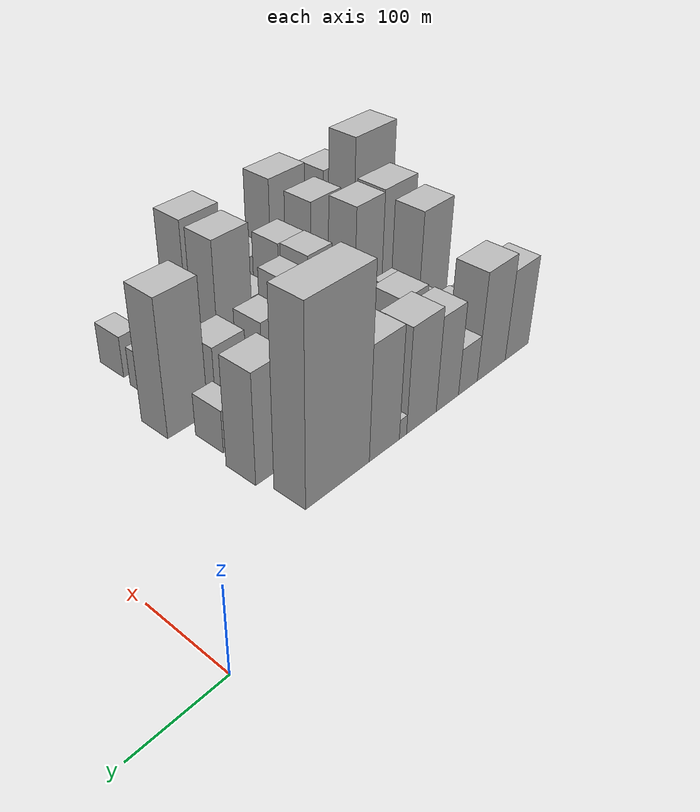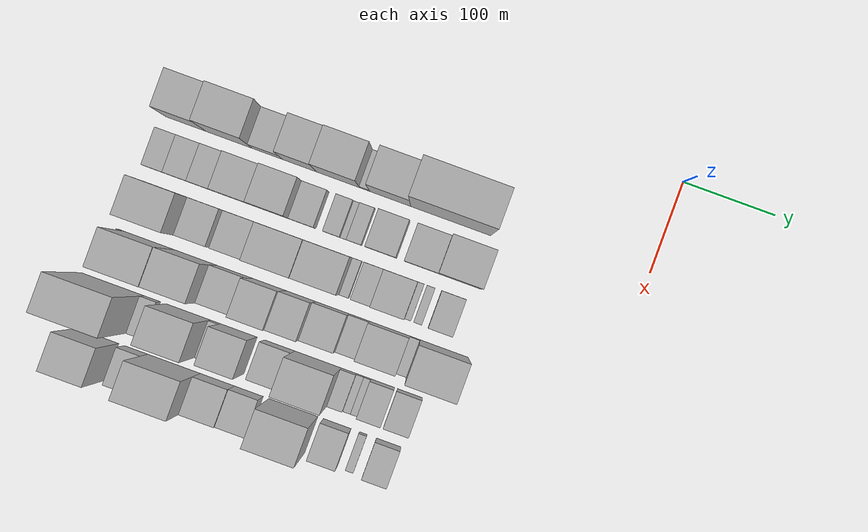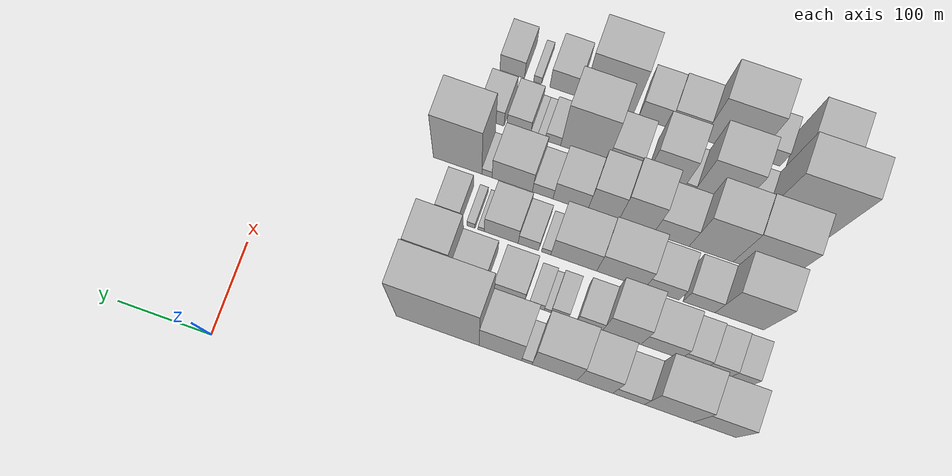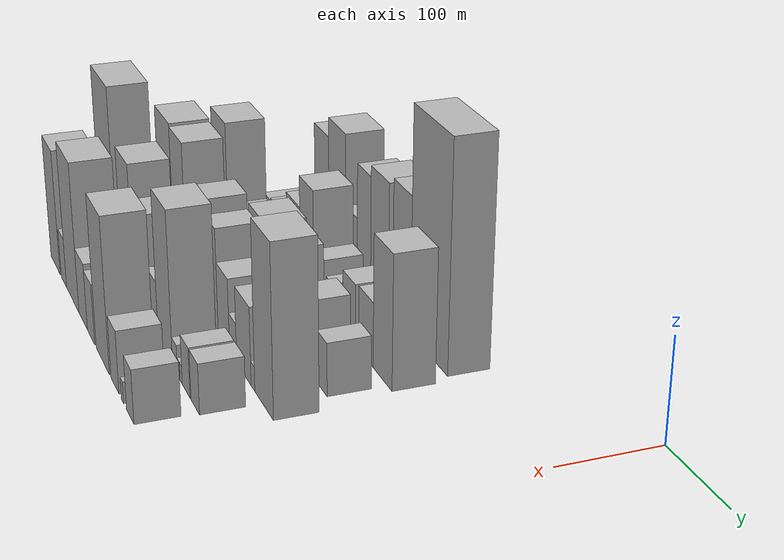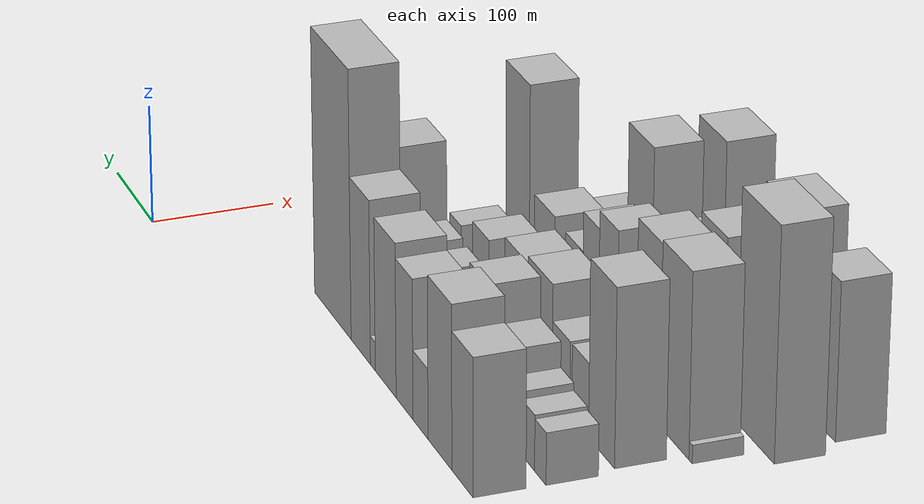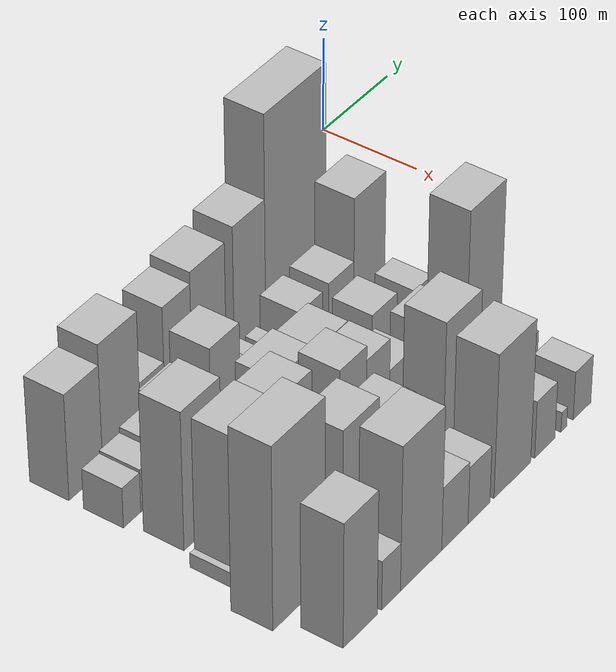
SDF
<sdf version="1.6">
 <world name="default">
  <model name="building_13">
   <static>1</static>
   <pose>100.0000 -499.0372 0 0.000000 0.000000 0.000000</pose>
   <link name="link">
    <pose>0 0 55.50 0 0 0</pose>
    <collision name="collision"><geometry><box><size>40.0000 44.0632 111.0000</size></box></geometry></collision>
    <visual name="visual">
     <cast_shadows>0</cast_shadows>
     <geometry><box><size>40.0000 44.0632 111.0000</size></box></geometry>
     <material>
      <script>
       <uri>model://HANNAS_wall/materials/scripts</uri>
       <uri>model://HANNAS_wall/materials/textures</uri>
       <name>vrc/HANNAS_wall</name>
      </script>
     </material>
    </visual>
   </link>
  </model>
  <model name="building_14">
   <static>1</static>
   <pose>100.0000 -451.7591 0 0.000000 0.000000 0.000000</pose>
   <link name="link">
    <pose>0 0 66.00 0 0 0</pose>
    <collision name="collision"><geometry><box><size>40.0000 50.4930 132.0000</size></box></geometry></collision>
    <visual name="visual">
     <cast_shadows>0</cast_shadows>
     <geometry><box><size>40.0000 50.4930 132.0000</size></box></geometry>
     <material>
      <script>
       <uri>model://HANNAS_wall/materials/scripts</uri>
       <uri>model://HANNAS_wall/materials/textures</uri>
       <name>vrc/HANNAS_wall</name>
      </script>
     </material>
    </visual>
   </link>
  </model>
  <model name="building_15">
   <static>1</static>
   <pose>100.0000 -410.1118 0 0.000000 0.000000 0.000000</pose>
   <link name="link">
    <pose>0 0 28.50 0 0 0</pose>
    <collision name="collision"><geometry><box><size>40.0000 32.8017 57.0000</size></box></geometry></collision>
    <visual name="visual">
     <cast_shadows>0</cast_shadows>
     <geometry><box><size>40.0000 32.8017 57.0000</size></box></geometry>
     <material>
      <script>
       <uri>model://HANNAS_wall/materials/scripts</uri>
       <uri>model://HANNAS_wall/materials/textures</uri>
       <name>vrc/HANNAS_wall</name>
      </script>
     </material>
    </visual>
   </link>
  </model>
  <model name="building_16">
   <static>1</static>
   <pose>100.0000 -375.1171 0 0.000000 0.000000 0.000000</pose>
   <link name="link">
    <pose>0 0 57.00 0 0 0</pose>
    <collision name="collision"><geometry><box><size>40.0000 37.1876 114.0000</size></box></geometry></collision>
    <visual name="visual">
     <cast_shadows>0</cast_shadows>
     <geometry><box><size>40.0000 37.1876 114.0000</size></box></geometry>
     <material>
      <script>
       <uri>model://HANNAS_wall/materials/scripts</uri>
       <uri>model://HANNAS_wall/materials/textures</uri>
       <name>vrc/HANNAS_wall</name>
      </script>
     </material>
    </visual>
   </link>
  </model>
  <model name="building_17">
   <static>1</static>
   <pose>100.0000 -333.0066 0 0.000000 0.000000 0.000000</pose>
   <link name="link">
    <pose>0 0 63.00 0 0 0</pose>
    <collision name="collision"><geometry><box><size>40.0000 47.0333 126.0000</size></box></geometry></collision>
    <visual name="visual">
     <cast_shadows>0</cast_shadows>
     <geometry><box><size>40.0000 47.0333 126.0000</size></box></geometry>
     <material>
      <script>
       <uri>model://HANNAS_wall/materials/scripts</uri>
       <uri>model://HANNAS_wall/materials/textures</uri>
       <name>vrc/HANNAS_wall</name>
      </script>
     </material>
    </visual>
   </link>
  </model>
  <model name="building_18">
   <static>1</static>
   <pose>100.0000 -303.9368 0 0.000000 0.000000 0.000000</pose>
   <link name="link">
    <pose>0 0 12.00 0 0 0</pose>
    <collision name="collision"><geometry><box><size>40.0000 11.1064 24.0000</size></box></geometry></collision>
    <visual name="visual">
     <cast_shadows>0</cast_shadows>
     <geometry><box><size>40.0000 11.1064 24.0000</size></box></geometry>
     <material>
      <script>
       <uri>model://HANNAS_wall/materials/scripts</uri>
       <uri>model://HANNAS_wall/materials/textures</uri>
       <name>vrc/HANNAS_wall</name>
      </script>
     </material>
    </visual>
   </link>
  </model>
  <model name="building_19">
   <static>1</static>
   <pose>100.0000 -276.0920 0 0.000000 0.000000 0.000000</pose>
   <link name="link">
    <pose>0 0 67.50 0 0 0</pose>
    <collision name="collision"><geometry><box><size>40.0000 44.5833 135.0000</size></box></geometry></collision>
    <visual name="visual">
     <cast_shadows>0</cast_shadows>
     <geometry><box><size>40.0000 44.5833 135.0000</size></box></geometry>
     <material>
      <script>
       <uri>model://HANNAS_wall/materials/scripts</uri>
       <uri>model://HANNAS_wall/materials/textures</uri>
       <name>vrc/HANNAS_wall</name>
      </script>
     </material>
    </visual>
   </link>
  </model>
  <model name="building_20">
   <static>1</static>
   <pose>100.0000 -210.1703 0 0.000000 0.000000 0.000000</pose>
   <link name="link">
    <pose>0 0 111.00 0 0 0</pose>
    <collision name="collision"><geometry><box><size>40.0000 87.2600 222.0000</size></box></geometry></collision>
    <visual name="visual">
     <cast_shadows>0</cast_shadows>
     <geometry><box><size>40.0000 87.2600 222.0000</size></box></geometry>
     <material>
      <script>
       <uri>model://HANNAS_wall/materials/scripts</uri>
       <uri>model://HANNAS_wall/materials/textures</uri>
       <name>vrc/HANNAS_wall</name>
      </script>
     </material>
    </visual>
   </link>
  </model>
  <model name="building_63">
   <static>1</static>
   <pose>155.0000 -510.1110 0 0.000000 0.000000 0.000000</pose>
   <link name="link">
    <pose>0 0 21.00 0 0 0</pose>
    <collision name="collision"><geometry><box><size>40.0000 22.8636 42.0000</size></box></geometry></collision>
    <visual name="visual">
     <cast_shadows>0</cast_shadows>
     <geometry><box><size>40.0000 22.8636 42.0000</size></box></geometry>
     <material>
      <script>
       <uri>model://HANNAS_wall/materials/scripts</uri>
       <uri>model://HANNAS_wall/materials/textures</uri>
       <name>vrc/HANNAS_wall</name>
      </script>
     </material>
    </visual>
   </link>
  </model>
  <model name="building_64">
   <static>1</static>
   <pose>155.0000 -485.5041 0 0.000000 0.000000 0.000000</pose>
   <link name="link">
    <pose>0 0 22.50 0 0 0</pose>
    <collision name="collision"><geometry><box><size>40.0000 26.3502 45.0000</size></box></geometry></collision>
    <visual name="visual">
     <cast_shadows>0</cast_shadows>
     <geometry><box><size>40.0000 26.3502 45.0000</size></box></geometry>
     <material>
      <script>
       <uri>model://HANNAS_wall/materials/scripts</uri>
       <uri>model://HANNAS_wall/materials/textures</uri>
       <name>vrc/HANNAS_wall</name>
      </script>
     </material>
    </visual>
   </link>
  </model>
  <model name="building_65">
   <static>1</static>
   <pose>155.0000 -459.2573 0 0.000000 0.000000 0.000000</pose>
   <link name="link">
    <pose>0 0 25.50 0 0 0</pose>
    <collision name="collision"><geometry><box><size>40.0000 26.1435 51.0000</size></box></geometry></collision>
    <visual name="visual">
     <cast_shadows>0</cast_shadows>
     <geometry><box><size>40.0000 26.1435 51.0000</size></box></geometry>
     <material>
      <script>
       <uri>model://HANNAS_wall/materials/scripts</uri>
       <uri>model://HANNAS_wall/materials/textures</uri>
       <name>vrc/HANNAS_wall</name>
      </script>
     </material>
    </visual>
   </link>
  </model>
  <model name="building_66">
   <static>1</static>
   <pose>155.0000 -425.3803 0 0.000000 0.000000 0.000000</pose>
   <link name="link">
    <pose>0 0 36.00 0 0 0</pose>
    <collision name="collision"><geometry><box><size>40.0000 41.6105 72.0000</size></box></geometry></collision>
    <visual name="visual">
     <cast_shadows>0</cast_shadows>
     <geometry><box><size>40.0000 41.6105 72.0000</size></box></geometry>
     <material>
      <script>
       <uri>model://HANNAS_wall/materials/scripts</uri>
       <uri>model://HANNAS_wall/materials/textures</uri>
       <name>vrc/HANNAS_wall</name>
      </script>
     </material>
    </visual>
   </link>
  </model>
  <model name="building_67">
   <static>1</static>
   <pose>155.0000 -384.4591 0 0.000000 0.000000 0.000000</pose>
   <link name="link">
    <pose>0 0 52.50 0 0 0</pose>
    <collision name="collision"><geometry><box><size>40.0000 40.2318 105.0000</size></box></geometry></collision>
    <visual name="visual">
     <cast_shadows>0</cast_shadows>
     <geometry><box><size>40.0000 40.2318 105.0000</size></box></geometry>
     <material>
      <script>
       <uri>model://HANNAS_wall/materials/scripts</uri>
       <uri>model://HANNAS_wall/materials/textures</uri>
       <name>vrc/HANNAS_wall</name>
      </script>
     </material>
    </visual>
   </link>
  </model>
  <model name="building_68">
   <static>1</static>
   <pose>155.0000 -350.8436 0 0.000000 0.000000 0.000000</pose>
   <link name="link">
    <pose>0 0 22.50 0 0 0</pose>
    <collision name="collision"><geometry><box><size>40.0000 26.9992 45.0000</size></box></geometry></collision>
    <visual name="visual">
     <cast_shadows>0</cast_shadows>
     <geometry><box><size>40.0000 26.9992 45.0000</size></box></geometry>
     <material>
      <script>
       <uri>model://HANNAS_wall/materials/scripts</uri>
       <uri>model://HANNAS_wall/materials/textures</uri>
       <name>vrc/HANNAS_wall</name>
      </script>
     </material>
    </visual>
   </link>
  </model>
  <model name="building_69">
   <static>1</static>
   <pose>155.0000 -319.2684 0 0.000000 0.000000 0.000000</pose>
   <link name="link">
    <pose>0 0 16.50 0 0 0</pose>
    <collision name="collision"><geometry><box><size>40.0000 18.1512 33.0000</size></box></geometry></collision>
    <visual name="visual">
     <cast_shadows>0</cast_shadows>
     <geometry><box><size>40.0000 18.1512 33.0000</size></box></geometry>
     <material>
      <script>
       <uri>model://HANNAS_wall/materials/scripts</uri>
       <uri>model://HANNAS_wall/materials/textures</uri>
       <name>vrc/HANNAS_wall</name>
      </script>
     </material>
    </visual>
   </link>
  </model>
  <model name="building_70">
   <static>1</static>
   <pose>155.0000 -306.5829 0 0.000000 0.000000 0.000000</pose>
   <link name="link">
    <pose>0 0 7.50 0 0 0</pose>
    <collision name="collision"><geometry><box><size>40.0000 7.2198 15.0000</size></box></geometry></collision>
    <visual name="visual">
     <cast_shadows>0</cast_shadows>
     <geometry><box><size>40.0000 7.2198 15.0000</size></box></geometry>
     <material>
      <script>
       <uri>model://HANNAS_wall/materials/scripts</uri>
       <uri>model://HANNAS_wall/materials/textures</uri>
       <name>vrc/HANNAS_wall</name>
      </script>
     </material>
    </visual>
   </link>
  </model>
  <model name="building_71">
   <static>1</static>
   <pose>155.0000 -294.9436 0 0.000000 0.000000 0.000000</pose>
   <link name="link">
    <pose>0 0 15.00 0 0 0</pose>
    <collision name="collision"><geometry><box><size>40.0000 16.0590 30.0000</size></box></geometry></collision>
    <visual name="visual">
     <cast_shadows>0</cast_shadows>
     <geometry><box><size>40.0000 16.0590 30.0000</size></box></geometry>
     <material>
      <script>
       <uri>model://HANNAS_wall/materials/scripts</uri>
       <uri>model://HANNAS_wall/materials/textures</uri>
       <name>vrc/HANNAS_wall</name>
      </script>
     </material>
    </visual>
   </link>
  </model>
  <model name="building_72">
   <static>1</static>
   <pose>155.0000 -265.4632 0 0.000000 0.000000 0.000000</pose>
   <link name="link">
    <pose>0 0 30.00 0 0 0</pose>
    <collision name="collision"><geometry><box><size>40.0000 32.9017 60.0000</size></box></geometry></collision>
    <visual name="visual">
     <cast_shadows>0</cast_shadows>
     <geometry><box><size>40.0000 32.9017 60.0000</size></box></geometry>
     <material>
      <script>
       <uri>model://HANNAS_wall/materials/scripts</uri>
       <uri>model://HANNAS_wall/materials/textures</uri>
       <name>vrc/HANNAS_wall</name>
      </script>
     </material>
    </visual>
   </link>
  </model>
  <model name="building_73">
   <static>1</static>
   <pose>155.0000 -221.8447 0 0.000000 0.000000 0.000000</pose>
   <link name="link">
    <pose>0 0 31.50 0 0 0</pose>
    <collision name="collision"><geometry><box><size>40.0000 36.3352 63.0000</size></box></geometry></collision>
    <visual name="visual">
     <cast_shadows>0</cast_shadows>
     <geometry><box><size>40.0000 36.3352 63.0000</size></box></geometry>
     <material>
      <script>
       <uri>model://HANNAS_wall/materials/scripts</uri>
       <uri>model://HANNAS_wall/materials/textures</uri>
       <name>vrc/HANNAS_wall</name>
      </script>
     </material>
    </visual>
   </link>
  </model>
  <model name="building_74">
   <static>1</static>
   <pose>155.0000 -180.8123 0 0.000000 0.000000 0.000000</pose>
   <link name="link">
    <pose>0 0 64.50 0 0 0</pose>
    <collision name="collision"><geometry><box><size>40.0000 45.7296 129.0000</size></box></geometry></collision>
    <visual name="visual">
     <cast_shadows>0</cast_shadows>
     <geometry><box><size>40.0000 45.7296 129.0000</size></box></geometry>
     <material>
      <script>
       <uri>model://HANNAS_wall/materials/scripts</uri>
       <uri>model://HANNAS_wall/materials/textures</uri>
       <name>vrc/HANNAS_wall</name>
      </script>
     </material>
    </visual>
   </link>
  </model>
  <model name="building_120">
   <static>1</static>
   <pose>210.0000 -489.5160 0 0.000000 0.000000 0.000000</pose>
   <link name="link">
    <pose>0 0 72.00 0 0 0</pose>
    <collision name="collision"><geometry><box><size>40.0000 50.9542 144.0000</size></box></geometry></collision>
    <visual name="visual">
     <cast_shadows>0</cast_shadows>
     <geometry><box><size>40.0000 50.9542 144.0000</size></box></geometry>
     <material>
      <script>
       <uri>model://HANNAS_wall/materials/scripts</uri>
       <uri>model://HANNAS_wall/materials/textures</uri>
       <name>vrc/HANNAS_wall</name>
      </script>
     </material>
    </visual>
   </link>
  </model>
  <model name="building_121">
   <static>1</static>
   <pose>210.0000 -447.2644 0 0.000000 0.000000 0.000000</pose>
   <link name="link">
    <pose>0 0 30.00 0 0 0</pose>
    <collision name="collision"><geometry><box><size>40.0000 33.5490 60.0000</size></box></geometry></collision>
    <visual name="visual">
     <cast_shadows>0</cast_shadows>
     <geometry><box><size>40.0000 33.5490 60.0000</size></box></geometry>
     <material>
      <script>
       <uri>model://HANNAS_wall/materials/scripts</uri>
       <uri>model://HANNAS_wall/materials/textures</uri>
       <name>vrc/HANNAS_wall</name>
      </script>
     </material>
    </visual>
   </link>
  </model>
  <model name="building_122">
   <static>1</static>
   <pose>210.0000 -408.5274 0 0.000000 0.000000 0.000000</pose>
   <link name="link">
    <pose>0 0 30.00 0 0 0</pose>
    <collision name="collision"><geometry><box><size>40.0000 35.9251 60.0000</size></box></geometry></collision>
    <visual name="visual">
     <cast_shadows>0</cast_shadows>
     <geometry><box><size>40.0000 35.9251 60.0000</size></box></geometry>
     <material>
      <script>
       <uri>model://HANNAS_wall/materials/scripts</uri>
       <uri>model://HANNAS_wall/materials/textures</uri>
       <name>vrc/HANNAS_wall</name>
      </script>
     </material>
    </visual>
   </link>
  </model>
  <model name="building_123">
   <static>1</static>
   <pose>210.0000 -365.1267 0 0.000000 0.000000 0.000000</pose>
   <link name="link">
    <pose>0 0 45.00 0 0 0</pose>
    <collision name="collision"><geometry><box><size>40.0000 50.8763 90.0000</size></box></geometry></collision>
    <visual name="visual">
     <cast_shadows>0</cast_shadows>
     <geometry><box><size>40.0000 50.8763 90.0000</size></box></geometry>
     <material>
      <script>
       <uri>model://HANNAS_wall/materials/scripts</uri>
       <uri>model://HANNAS_wall/materials/textures</uri>
       <name>vrc/HANNAS_wall</name>
      </script>
     </material>
    </visual>
   </link>
  </model>
  <model name="building_124">
   <static>1</static>
   <pose>210.0000 -315.3275 0 0.000000 0.000000 0.000000</pose>
   <link name="link">
    <pose>0 0 42.00 0 0 0</pose>
    <collision name="collision"><geometry><box><size>40.0000 48.7222 84.0000</size></box></geometry></collision>
    <visual name="visual">
     <cast_shadows>0</cast_shadows>
     <geometry><box><size>40.0000 48.7222 84.0000</size></box></geometry>
     <material>
      <script>
       <uri>model://HANNAS_wall/materials/scripts</uri>
       <uri>model://HANNAS_wall/materials/textures</uri>
       <name>vrc/HANNAS_wall</name>
      </script>
     </material>
    </visual>
   </link>
  </model>
  <model name="building_125">
   <static>1</static>
   <pose>210.0000 -285.9425 0 0.000000 0.000000 0.000000</pose>
   <link name="link">
    <pose>0 0 10.50 0 0 0</pose>
    <collision name="collision"><geometry><box><size>40.0000 10.0478 21.0000</size></box></geometry></collision>
    <visual name="visual">
     <cast_shadows>0</cast_shadows>
     <geometry><box><size>40.0000 10.0478 21.0000</size></box></geometry>
     <material>
      <script>
       <uri>model://HANNAS_wall/materials/scripts</uri>
       <uri>model://HANNAS_wall/materials/textures</uri>
       <name>vrc/HANNAS_wall</name>
      </script>
     </material>
    </visual>
   </link>
  </model>
  <model name="building_126">
   <static>1</static>
   <pose>210.0000 -267.0698 0 0.000000 0.000000 0.000000</pose>
   <link name="link">
    <pose>0 0 21.00 0 0 0</pose>
    <collision name="collision"><geometry><box><size>40.0000 21.6975 42.0000</size></box></geometry></collision>
    <visual name="visual">
     <cast_shadows>0</cast_shadows>
     <geometry><box><size>40.0000 21.6975 42.0000</size></box></geometry>
     <material>
      <script>
       <uri>model://HANNAS_wall/materials/scripts</uri>
       <uri>model://HANNAS_wall/materials/textures</uri>
       <name>vrc/HANNAS_wall</name>
      </script>
     </material>
    </visual>
   </link>
  </model>
  <model name="building_127">
   <static>1</static>
   <pose>210.0000 -238.1213 0 0.000000 0.000000 0.000000</pose>
   <link name="link">
    <pose>0 0 33.00 0 0 0</pose>
    <collision name="collision"><geometry><box><size>40.0000 36.1995 66.0000</size></box></geometry></collision>
    <visual name="visual">
     <cast_shadows>0</cast_shadows>
     <geometry><box><size>40.0000 36.1995 66.0000</size></box></geometry>
     <material>
      <script>
       <uri>model://HANNAS_wall/materials/scripts</uri>
       <uri>model://HANNAS_wall/materials/textures</uri>
       <name>vrc/HANNAS_wall</name>
      </script>
     </material>
    </visual>
   </link>
  </model>
  <model name="building_128">
   <static>1</static>
   <pose>210.0000 -216.6535 0 0.000000 0.000000 0.000000</pose>
   <link name="link">
    <pose>0 0 7.50 0 0 0</pose>
    <collision name="collision"><geometry><box><size>40.0000 6.7360 15.0000</size></box></geometry></collision>
    <visual name="visual">
     <cast_shadows>0</cast_shadows>
     <geometry><box><size>40.0000 6.7360 15.0000</size></box></geometry>
     <material>
      <script>
       <uri>model://HANNAS_wall/materials/scripts</uri>
       <uri>model://HANNAS_wall/materials/textures</uri>
       <name>vrc/HANNAS_wall</name>
      </script>
     </material>
    </visual>
   </link>
  </model>
  <model name="building_129">
   <static>1</static>
   <pose>210.0000 -205.8684 0 0.000000 0.000000 0.000000</pose>
   <link name="link">
    <pose>0 0 10.50 0 0 0</pose>
    <collision name="collision"><geometry><box><size>40.0000 8.8343 21.0000</size></box></geometry></collision>
    <visual name="visual">
     <cast_shadows>0</cast_shadows>
     <geometry><box><size>40.0000 8.8343 21.0000</size></box></geometry>
     <material>
      <script>
       <uri>model://HANNAS_wall/materials/scripts</uri>
       <uri>model://HANNAS_wall/materials/textures</uri>
       <name>vrc/HANNAS_wall</name>
      </script>
     </material>
    </visual>
   </link>
  </model>
  <model name="building_130">
   <static>1</static>
   <pose>210.0000 -181.3753 0 0.000000 0.000000 0.000000</pose>
   <link name="link">
    <pose>0 0 25.50 0 0 0</pose>
    <collision name="collision"><geometry><box><size>40.0000 26.1519 51.0000</size></box></geometry></collision>
    <visual name="visual">
     <cast_shadows>0</cast_shadows>
     <geometry><box><size>40.0000 26.1519 51.0000</size></box></geometry>
     <material>
      <script>
       <uri>model://HANNAS_wall/materials/scripts</uri>
       <uri>model://HANNAS_wall/materials/textures</uri>
       <name>vrc/HANNAS_wall</name>
      </script>
     </material>
    </visual>
   </link>
  </model>
  <model name="building_172">
   <static>1</static>
   <pose>265.0000 -524.0344 0 0.000000 0.000000 0.000000</pose>
   <link name="link">
    <pose>0 0 7.50 0 0 0</pose>
    <collision name="collision"><geometry><box><size>40.0000 6.2170 15.0000</size></box></geometry></collision>
    <visual name="visual">
     <cast_shadows>0</cast_shadows>
     <geometry><box><size>40.0000 6.2170 15.0000</size></box></geometry>
     <material>
      <script>
       <uri>model://HANNAS_wall/materials/scripts</uri>
       <uri>model://HANNAS_wall/materials/textures</uri>
       <name>vrc/HANNAS_wall</name>
      </script>
     </material>
    </visual>
   </link>
  </model>
  <model name="building_173">
   <static>1</static>
   <pose>265.0000 -493.1805 0 0.000000 0.000000 0.000000</pose>
   <link name="link">
    <pose>0 0 75.00 0 0 0</pose>
    <collision name="collision"><geometry><box><size>40.0000 55.4907 150.0000</size></box></geometry></collision>
    <visual name="visual">
     <cast_shadows>0</cast_shadows>
     <geometry><box><size>40.0000 55.4907 150.0000</size></box></geometry>
     <material>
      <script>
       <uri>model://HANNAS_wall/materials/scripts</uri>
       <uri>model://HANNAS_wall/materials/textures</uri>
       <name>vrc/HANNAS_wall</name>
      </script>
     </material>
    </visual>
   </link>
  </model>
  <model name="building_174">
   <static>1</static>
   <pose>265.0000 -442.1698 0 0.000000 0.000000 0.000000</pose>
   <link name="link">
    <pose>0 0 73.50 0 0 0</pose>
    <collision name="collision"><geometry><box><size>40.0000 46.5308 147.0000</size></box></geometry></collision>
    <visual name="visual">
     <cast_shadows>0</cast_shadows>
     <geometry><box><size>40.0000 46.5308 147.0000</size></box></geometry>
     <material>
      <script>
       <uri>model://HANNAS_wall/materials/scripts</uri>
       <uri>model://HANNAS_wall/materials/textures</uri>
       <name>vrc/HANNAS_wall</name>
      </script>
     </material>
    </visual>
   </link>
  </model>
  <model name="building_175">
   <static>1</static>
   <pose>265.0000 -399.9388 0 0.000000 0.000000 0.000000</pose>
   <link name="link">
    <pose>0 0 37.50 0 0 0</pose>
    <collision name="collision"><geometry><box><size>40.0000 37.9312 75.0000</size></box></geometry></collision>
    <visual name="visual">
     <cast_shadows>0</cast_shadows>
     <geometry><box><size>40.0000 37.9312 75.0000</size></box></geometry>
     <material>
      <script>
       <uri>model://HANNAS_wall/materials/scripts</uri>
       <uri>model://HANNAS_wall/materials/textures</uri>
       <name>vrc/HANNAS_wall</name>
      </script>
     </material>
    </visual>
   </link>
  </model>
  <model name="building_176">
   <static>1</static>
   <pose>265.0000 -362.3117 0 0.000000 0.000000 0.000000</pose>
   <link name="link">
    <pose>0 0 60.00 0 0 0</pose>
    <collision name="collision"><geometry><box><size>40.0000 37.3228 120.0000</size></box></geometry></collision>
    <visual name="visual">
     <cast_shadows>0</cast_shadows>
     <geometry><box><size>40.0000 37.3228 120.0000</size></box></geometry>
     <material>
      <script>
       <uri>model://HANNAS_wall/materials/scripts</uri>
       <uri>model://HANNAS_wall/materials/textures</uri>
       <name>vrc/HANNAS_wall</name>
      </script>
     </material>
    </visual>
   </link>
  </model>
  <model name="building_177">
   <static>1</static>
   <pose>265.0000 -327.2841 0 0.000000 0.000000 0.000000</pose>
   <link name="link">
    <pose>0 0 52.50 0 0 0</pose>
    <collision name="collision"><geometry><box><size>40.0000 32.7325 105.0000</size></box></geometry></collision>
    <visual name="visual">
     <cast_shadows>0</cast_shadows>
     <geometry><box><size>40.0000 32.7325 105.0000</size></box></geometry>
     <material>
      <script>
       <uri>model://HANNAS_wall/materials/scripts</uri>
       <uri>model://HANNAS_wall/materials/textures</uri>
       <name>vrc/HANNAS_wall</name>
      </script>
     </material>
    </visual>
   </link>
  </model>
  <model name="building_178">
   <static>1</static>
   <pose>265.0000 -292.5692 0 0.000000 0.000000 0.000000</pose>
   <link name="link">
    <pose>0 0 36.00 0 0 0</pose>
    <collision name="collision"><geometry><box><size>40.0000 36.6973 72.0000</size></box></geometry></collision>
    <visual name="visual">
     <cast_shadows>0</cast_shadows>
     <geometry><box><size>40.0000 36.6973 72.0000</size></box></geometry>
     <material>
      <script>
       <uri>model://HANNAS_wall/materials/scripts</uri>
       <uri>model://HANNAS_wall/materials/textures</uri>
       <name>vrc/HANNAS_wall</name>
      </script>
     </material>
    </visual>
   </link>
  </model>
  <model name="building_179">
   <static>1</static>
   <pose>265.0000 -263.2019 0 0.000000 0.000000 0.000000</pose>
   <link name="link">
    <pose>0 0 19.50 0 0 0</pose>
    <collision name="collision"><geometry><box><size>40.0000 22.0373 39.0000</size></box></geometry></collision>
    <visual name="visual">
     <cast_shadows>0</cast_shadows>
     <geometry><box><size>40.0000 22.0373 39.0000</size></box></geometry>
     <material>
      <script>
       <uri>model://HANNAS_wall/materials/scripts</uri>
       <uri>model://HANNAS_wall/materials/textures</uri>
       <name>vrc/HANNAS_wall</name>
      </script>
     </material>
    </visual>
   </link>
  </model>
  <model name="building_180">
   <static>1</static>
   <pose>265.0000 -230.4928 0 0.000000 0.000000 0.000000</pose>
   <link name="link">
    <pose>0 0 37.50 0 0 0</pose>
    <collision name="collision"><geometry><box><size>40.0000 43.3809 75.0000</size></box></geometry></collision>
    <visual name="visual">
     <cast_shadows>0</cast_shadows>
     <geometry><box><size>40.0000 43.3809 75.0000</size></box></geometry>
     <material>
      <script>
       <uri>model://HANNAS_wall/materials/scripts</uri>
       <uri>model://HANNAS_wall/materials/textures</uri>
       <name>vrc/HANNAS_wall</name>
      </script>
     </material>
    </visual>
   </link>
  </model>
  <model name="building_181">
   <static>1</static>
   <pose>265.0000 -203.3347 0 0.000000 0.000000 0.000000</pose>
   <link name="link">
    <pose>0 0 12.00 0 0 0</pose>
    <collision name="collision"><geometry><box><size>40.0000 10.9353 24.0000</size></box></geometry></collision>
    <visual name="visual">
     <cast_shadows>0</cast_shadows>
     <geometry><box><size>40.0000 10.9353 24.0000</size></box></geometry>
     <material>
      <script>
       <uri>model://HANNAS_wall/materials/scripts</uri>
       <uri>model://HANNAS_wall/materials/textures</uri>
       <name>vrc/HANNAS_wall</name>
      </script>
     </material>
    </visual>
   </link>
  </model>
  <model name="building_182">
   <static>1</static>
   <pose>265.0000 -171.7483 0 0.000000 0.000000 0.000000</pose>
   <link name="link">
    <pose>0 0 81.00 0 0 0</pose>
    <collision name="collision"><geometry><box><size>40.0000 52.2374 162.0000</size></box></geometry></collision>
    <visual name="visual">
     <cast_shadows>0</cast_shadows>
     <geometry><box><size>40.0000 52.2374 162.0000</size></box></geometry>
     <material>
      <script>
       <uri>model://HANNAS_wall/materials/scripts</uri>
       <uri>model://HANNAS_wall/materials/textures</uri>
       <name>vrc/HANNAS_wall</name>
      </script>
     </material>
    </visual>
   </link>
  </model>
  <model name="building_223">
   <static>1</static>
   <pose>320.0000 -513.2614 0 0.000000 0.000000 0.000000</pose>
   <link name="link">
    <pose>0 0 94.50 0 0 0</pose>
    <collision name="collision"><geometry><box><size>40.0000 69.4002 189.0000</size></box></geometry></collision>
    <visual name="visual">
     <cast_shadows>0</cast_shadows>
     <geometry><box><size>40.0000 69.4002 189.0000</size></box></geometry>
     <material>
      <script>
       <uri>model://HANNAS_wall/materials/scripts</uri>
       <uri>model://HANNAS_wall/materials/textures</uri>
       <name>vrc/HANNAS_wall</name>
      </script>
     </material>
    </visual>
   </link>
  </model>
  <model name="building_224">
   <static>1</static>
   <pose>320.0000 -469.7385 0 0.000000 0.000000 0.000000</pose>
   <link name="link">
    <pose>0 0 16.50 0 0 0</pose>
    <collision name="collision"><geometry><box><size>40.0000 17.6455 33.0000</size></box></geometry></collision>
    <visual name="visual">
     <cast_shadows>0</cast_shadows>
     <geometry><box><size>40.0000 17.6455 33.0000</size></box></geometry>
     <material>
      <script>
       <uri>model://HANNAS_wall/materials/scripts</uri>
       <uri>model://HANNAS_wall/materials/textures</uri>
       <name>vrc/HANNAS_wall</name>
      </script>
     </material>
    </visual>
   </link>
  </model>
  <model name="building_225">
   <static>1</static>
   <pose>320.0000 -430.5641 0 0.000000 0.000000 0.000000</pose>
   <link name="link">
    <pose>0 0 69.00 0 0 0</pose>
    <collision name="collision"><geometry><box><size>40.0000 48.7032 138.0000</size></box></geometry></collision>
    <visual name="visual">
     <cast_shadows>0</cast_shadows>
     <geometry><box><size>40.0000 48.7032 138.0000</size></box></geometry>
     <material>
      <script>
       <uri>model://HANNAS_wall/materials/scripts</uri>
       <uri>model://HANNAS_wall/materials/textures</uri>
       <name>vrc/HANNAS_wall</name>
      </script>
     </material>
    </visual>
   </link>
  </model>
  <model name="building_226">
   <static>1</static>
   <pose>320.0000 -400.7509 0 0.000000 0.000000 0.000000</pose>
   <link name="link">
    <pose>0 0 12.00 0 0 0</pose>
    <collision name="collision"><geometry><box><size>40.0000 10.9233 24.0000</size></box></geometry></collision>
    <visual name="visual">
     <cast_shadows>0</cast_shadows>
     <geometry><box><size>40.0000 10.9233 24.0000</size></box></geometry>
     <material>
      <script>
       <uri>model://HANNAS_wall/materials/scripts</uri>
       <uri>model://HANNAS_wall/materials/textures</uri>
       <name>vrc/HANNAS_wall</name>
      </script>
     </material>
    </visual>
   </link>
  </model>
  <model name="building_227">
   <static>1</static>
   <pose>320.0000 -375.3691 0 0.000000 0.000000 0.000000</pose>
   <link name="link">
    <pose>0 0 54.00 0 0 0</pose>
    <collision name="collision"><geometry><box><size>40.0000 39.8403 108.0000</size></box></geometry></collision>
    <visual name="visual">
     <cast_shadows>0</cast_shadows>
     <geometry><box><size>40.0000 39.8403 108.0000</size></box></geometry>
     <material>
      <script>
       <uri>model://HANNAS_wall/materials/scripts</uri>
       <uri>model://HANNAS_wall/materials/textures</uri>
       <name>vrc/HANNAS_wall</name>
      </script>
     </material>
    </visual>
   </link>
  </model>
  <model name="building_228">
   <static>1</static>
   <pose>320.0000 -330.7669 0 0.000000 0.000000 0.000000</pose>
   <link name="link">
    <pose>0 0 30.00 0 0 0</pose>
    <collision name="collision"><geometry><box><size>40.0000 33.3641 60.0000</size></box></geometry></collision>
    <visual name="visual">
     <cast_shadows>0</cast_shadows>
     <geometry><box><size>40.0000 33.3641 60.0000</size></box></geometry>
     <material>
      <script>
       <uri>model://HANNAS_wall/materials/scripts</uri>
       <uri>model://HANNAS_wall/materials/textures</uri>
       <name>vrc/HANNAS_wall</name>
      </script>
     </material>
    </visual>
   </link>
  </model>
  <model name="building_229">
   <static>1</static>
   <pose>320.0000 -288.7604 0 0.000000 0.000000 0.000000</pose>
   <link name="link">
    <pose>0 0 75.00 0 0 0</pose>
    <collision name="collision"><geometry><box><size>40.0000 50.6489 150.0000</size></box></geometry></collision>
    <visual name="visual">
     <cast_shadows>0</cast_shadows>
     <geometry><box><size>40.0000 50.6489 150.0000</size></box></geometry>
     <material>
      <script>
       <uri>model://HANNAS_wall/materials/scripts</uri>
       <uri>model://HANNAS_wall/materials/textures</uri>
       <name>vrc/HANNAS_wall</name>
      </script>
     </material>
    </visual>
   </link>
  </model>
  <model name="building_230">
   <static>1</static>
   <pose>320.0000 -255.0669 0 0.000000 0.000000 0.000000</pose>
   <link name="link">
    <pose>0 0 15.00 0 0 0</pose>
    <collision name="collision"><geometry><box><size>40.0000 16.7380 30.0000</size></box></geometry></collision>
    <visual name="visual">
     <cast_shadows>0</cast_shadows>
     <geometry><box><size>40.0000 16.7380 30.0000</size></box></geometry>
     <material>
      <script>
       <uri>model://HANNAS_wall/materials/scripts</uri>
       <uri>model://HANNAS_wall/materials/textures</uri>
       <name>vrc/HANNAS_wall</name>
      </script>
     </material>
    </visual>
   </link>
  </model>
  <model name="building_231">
   <static>1</static>
   <pose>320.0000 -242.6004 0 0.000000 0.000000 0.000000</pose>
   <link name="link">
    <pose>0 0 9.00 0 0 0</pose>
    <collision name="collision"><geometry><box><size>40.0000 8.1950 18.0000</size></box></geometry></collision>
    <visual name="visual">
     <cast_shadows>0</cast_shadows>
     <geometry><box><size>40.0000 8.1950 18.0000</size></box></geometry>
     <material>
      <script>
       <uri>model://HANNAS_wall/materials/scripts</uri>
       <uri>model://HANNAS_wall/materials/textures</uri>
       <name>vrc/HANNAS_wall</name>
      </script>
     </material>
    </visual>
   </link>
  </model>
  <model name="building_232">
   <static>1</static>
   <pose>320.0000 -234.7206 0 0.000000 0.000000 0.000000</pose>
   <link name="link">
    <pose>0 0 9.00 0 0 0</pose>
    <collision name="collision"><geometry><box><size>40.0000 7.5646 18.0000</size></box></geometry></collision>
    <visual name="visual">
     <cast_shadows>0</cast_shadows>
     <geometry><box><size>40.0000 7.5646 18.0000</size></box></geometry>
     <material>
      <script>
       <uri>model://HANNAS_wall/materials/scripts</uri>
       <uri>model://HANNAS_wall/materials/textures</uri>
       <name>vrc/HANNAS_wall</name>
      </script>
     </material>
    </visual>
   </link>
  </model>
  <model name="building_233">
   <static>1</static>
   <pose>320.0000 -218.0963 0 0.000000 0.000000 0.000000</pose>
   <link name="link">
    <pose>0 0 24.00 0 0 0</pose>
    <collision name="collision"><geometry><box><size>40.0000 25.6840 48.0000</size></box></geometry></collision>
    <visual name="visual">
     <cast_shadows>0</cast_shadows>
     <geometry><box><size>40.0000 25.6840 48.0000</size></box></geometry>
     <material>
      <script>
       <uri>model://HANNAS_wall/materials/scripts</uri>
       <uri>model://HANNAS_wall/materials/textures</uri>
       <name>vrc/HANNAS_wall</name>
      </script>
     </material>
    </visual>
   </link>
  </model>
  <model name="building_234">
   <static>1</static>
   <pose>320.0000 -188.6757 0 0.000000 0.000000 0.000000</pose>
   <link name="link">
    <pose>0 0 24.00 0 0 0</pose>
    <collision name="collision"><geometry><box><size>40.0000 27.1572 48.0000</size></box></geometry></collision>
    <visual name="visual">
     <cast_shadows>0</cast_shadows>
     <geometry><box><size>40.0000 27.1572 48.0000</size></box></geometry>
     <material>
      <script>
       <uri>model://HANNAS_wall/materials/scripts</uri>
       <uri>model://HANNAS_wall/materials/textures</uri>
       <name>vrc/HANNAS_wall</name>
      </script>
     </material>
    </visual>
   </link>
  </model>
  <model name="building_278">
   <static>1</static>
   <pose>375.0000 -509.2454 0 0.000000 0.000000 0.000000</pose>
   <link name="link">
    <pose>0 0 64.50 0 0 0</pose>
    <collision name="collision"><geometry><box><size>40.0000 45.7369 129.0000</size></box></geometry></collision>
    <visual name="visual">
     <cast_shadows>0</cast_shadows>
     <geometry><box><size>40.0000 45.7369 129.0000</size></box></geometry>
     <material>
      <script>
       <uri>model://HANNAS_wall/materials/scripts</uri>
       <uri>model://HANNAS_wall/materials/textures</uri>
       <name>vrc/HANNAS_wall</name>
      </script>
     </material>
    </visual>
   </link>
  </model>
  <model name="building_279">
   <static>1</static>
   <pose>375.0000 -467.5562 0 0.000000 0.000000 0.000000</pose>
   <link name="link">
    <pose>0 0 25.50 0 0 0</pose>
    <collision name="collision"><geometry><box><size>40.0000 25.6415 51.0000</size></box></geometry></collision>
    <visual name="visual">
     <cast_shadows>0</cast_shadows>
     <geometry><box><size>40.0000 25.6415 51.0000</size></box></geometry>
     <material>
      <script>
       <uri>model://HANNAS_wall/materials/scripts</uri>
       <uri>model://HANNAS_wall/materials/textures</uri>
       <name>vrc/HANNAS_wall</name>
      </script>
     </material>
    </visual>
   </link>
  </model>
  <model name="building_280">
   <static>1</static>
   <pose>375.0000 -425.9982 0 0.000000 0.000000 0.000000</pose>
   <link name="link">
    <pose>0 0 75.00 0 0 0</pose>
    <collision name="collision"><geometry><box><size>40.0000 57.4745 150.0000</size></box></geometry></collision>
    <visual name="visual">
     <cast_shadows>0</cast_shadows>
     <geometry><box><size>40.0000 57.4745 150.0000</size></box></geometry>
     <material>
      <script>
       <uri>model://HANNAS_wall/materials/scripts</uri>
       <uri>model://HANNAS_wall/materials/textures</uri>
       <name>vrc/HANNAS_wall</name>
      </script>
     </material>
    </visual>
   </link>
  </model>
  <model name="building_281">
   <static>1</static>
   <pose>375.0000 -378.6598 0 0.000000 0.000000 0.000000</pose>
   <link name="link">
    <pose>0 0 33.00 0 0 0</pose>
    <collision name="collision"><geometry><box><size>40.0000 37.2023 66.0000</size></box></geometry></collision>
    <visual name="visual">
     <cast_shadows>0</cast_shadows>
     <geometry><box><size>40.0000 37.2023 66.0000</size></box></geometry>
     <material>
      <script>
       <uri>model://HANNAS_wall/materials/scripts</uri>
       <uri>model://HANNAS_wall/materials/textures</uri>
       <name>vrc/HANNAS_wall</name>
      </script>
     </material>
    </visual>
   </link>
  </model>
  <model name="building_282">
   <static>1</static>
   <pose>375.0000 -344.3430 0 0.000000 0.000000 0.000000</pose>
   <link name="link">
    <pose>0 0 30.00 0 0 0</pose>
    <collision name="collision"><geometry><box><size>40.0000 31.4312 60.0000</size></box></geometry></collision>
    <visual name="visual">
     <cast_shadows>0</cast_shadows>
     <geometry><box><size>40.0000 31.4312 60.0000</size></box></geometry>
     <material>
      <script>
       <uri>model://HANNAS_wall/materials/scripts</uri>
       <uri>model://HANNAS_wall/materials/textures</uri>
       <name>vrc/HANNAS_wall</name>
      </script>
     </material>
    </visual>
   </link>
  </model>
  <model name="building_283">
   <static>1</static>
   <pose>375.0000 -295.8221 0 0.000000 0.000000 0.000000</pose>
   <link name="link">
    <pose>0 0 75.00 0 0 0</pose>
    <collision name="collision"><geometry><box><size>40.0000 53.6106 150.0000</size></box></geometry></collision>
    <visual name="visual">
     <cast_shadows>0</cast_shadows>
     <geometry><box><size>40.0000 53.6106 150.0000</size></box></geometry>
     <material>
      <script>
       <uri>model://HANNAS_wall/materials/scripts</uri>
       <uri>model://HANNAS_wall/materials/textures</uri>
       <name>vrc/HANNAS_wall</name>
      </script>
     </material>
    </visual>
   </link>
  </model>
  <model name="building_284">
   <static>1</static>
   <pose>375.0000 -247.8530 0 0.000000 0.000000 0.000000</pose>
   <link name="link">
    <pose>0 0 30.00 0 0 0</pose>
    <collision name="collision"><geometry><box><size>40.0000 30.3277 60.0000</size></box></geometry></collision>
    <visual name="visual">
     <cast_shadows>0</cast_shadows>
     <geometry><box><size>40.0000 30.3277 60.0000</size></box></geometry>
     <material>
      <script>
       <uri>model://HANNAS_wall/materials/scripts</uri>
       <uri>model://HANNAS_wall/materials/textures</uri>
       <name>vrc/HANNAS_wall</name>
      </script>
     </material>
    </visual>
   </link>
  </model>
  <model name="building_285">
   <static>1</static>
   <pose>375.0000 -219.4000 0 0.000000 0.000000 0.000000</pose>
   <link name="link">
    <pose>0 0 10.50 0 0 0</pose>
    <collision name="collision"><geometry><box><size>40.0000 8.5782 21.0000</size></box></geometry></collision>
    <visual name="visual">
     <cast_shadows>0</cast_shadows>
     <geometry><box><size>40.0000 8.5782 21.0000</size></box></geometry>
     <material>
      <script>
       <uri>model://HANNAS_wall/materials/scripts</uri>
       <uri>model://HANNAS_wall/materials/textures</uri>
       <name>vrc/HANNAS_wall</name>
      </script>
     </material>
    </visual>
   </link>
  </model>
  <model name="building_286">
   <static>1</static>
   <pose>375.0000 -191.7170 0 0.000000 0.000000 0.000000</pose>
   <link name="link">
    <pose>0 0 25.50 0 0 0</pose>
    <collision name="collision"><geometry><box><size>40.0000 26.7878 51.0000</size></box></geometry></collision>
    <visual name="visual">
     <cast_shadows>0</cast_shadows>
     <geometry><box><size>40.0000 26.7878 51.0000</size></box></geometry>
     <material>
      <script>
       <uri>model://HANNAS_wall/materials/scripts</uri>
       <uri>model://HANNAS_wall/materials/textures</uri>
       <name>vrc/HANNAS_wall</name>
      </script>
     </material>
    </visual>
   </link>
  </model>
 </world>
</sdf>
